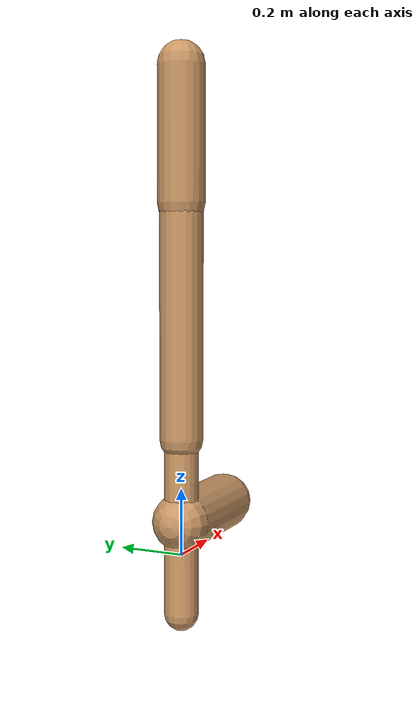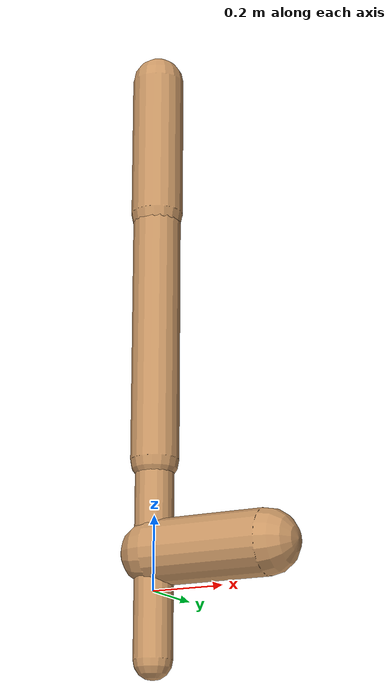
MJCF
<mujoco model="walker2d">
  <compiler angle="degree" coordinate="global" inertiafromgeom="true" />
  <default>
    <joint armature="0.01" damping=".1" limited="true" />
    <geom conaffinity="0" condim="3" contype="1" density="1000" friction="0.8 .1 .1" rgba="0.8 0.6 .4 1" />
  </default>
  <option integrator="RK4" timestep="0.002" />
  <worldbody>

    <body name="torso" pos="0 0 0.5286615055324028">
      <joint armature="0" axis="1 0 0" damping="0" limited="false" name="ignorex" pos="0 0 0" stiffness="0" type="slide" />
      <joint armature="0" axis="0 0 1" damping="0" limited="false" name="ignorez" pos="0 0 0" ref="1.25" stiffness="0" type="slide" />
      <joint armature="0" axis="0 1 0" damping="0" limited="false" name="ignorey" pos="0 0 0" stiffness="0" type="hinge" />
      <geom fromto="0 0 1.45 0 0 1.05" name="torso_geom" size="0.0710860431256403" type="capsule" />
      <body name="thigh">
        <joint axis="0 -1 0" name="thigh_joint" pos="0 0 1.05" range="-150 0" type="hinge" />
        <geom fromto="0.0 0.0 1.05 0.0 0.0 0.34958139211623024" name="thigh_geom" size="0.06534521257659057" type="capsule" />
        <body name="leg" pos="0.0 0.0 -0.25041860788376974">
          <joint axis="0 -1 0" name="leg_joint" pos="0 0 0.6" range="-150 0" type="hinge" />
          <geom fromto="0.0 0.0 0.6 0.0 0.0 -0.17824289764863302" name="leg_geom" size="0.05227617006127245" type="capsule" />
          <body name="foot" pos="0.0 0.0 -0.278242897648633">
            <joint axis="0 -1 0" name="foot_joint" pos="0 0 0.1" range="-45 45" type="hinge" />
            <geom fromto="-0.0 0.0 0.10000000000000002 0.32781778599357214 0.0 0.10000000000000002" name="foot_geom" size="0.08772630301829931" type="capsule" />
          </body>
        </body>
      </body>

      <body name="thigh_left">
        <joint axis="0 -1 0" name="thigh_left_joint" pos="0 0 1.05" range="-150 0" type="hinge" />
        <geom fromto="0.0 0.0 1.05 0.0 0.0 0.34958139211623024" name="thigh_left_geom" rgba=".7 .3 .6 1" size="0.06534521257659057" type="capsule" />
        <body name="leg_left" pos="0.0 0.0 -0.25041860788376974">
          <joint axis="0 -1 0" name="leg_left_joint" pos="0 0 0.6" range="-150 0" type="hinge" />
          <geom fromto="0.0 0.0 0.6 0.0 0.0 -0.17824289764863302" name="leg_left_geom" rgba=".7 .3 .6 1" size="0.05227617006127245" type="capsule" />
          <body name="foot_left" pos="0.0 0.0 -0.278242897648633">
            <joint axis="0 -1 0" name="foot_left_joint" pos="0 0 0.1" range="-45 45" type="hinge" />
            <geom fromto="-0.0 0.0 0.10000000000000002 0.32781778599357214 0.0 0.10000000000000002" name="foot_left_geom" rgba=".7 .3 .6 1" size="0.08772630301829931" type="capsule" />
          </body>
        </body>
      </body>
    </body>
  </worldbody>
  <actuator>

    <motor ctrllimited="true" ctrlrange="-1.0 1.0" gear="100" joint="thigh_joint" />
    <motor ctrllimited="true" ctrlrange="-1.0 1.0" gear="100" joint="leg_joint" />
    <motor ctrllimited="true" ctrlrange="-1.0 1.0" gear="100" joint="foot_joint" />
    <motor ctrllimited="true" ctrlrange="-1.0 1.0" gear="100" joint="thigh_left_joint" />
    <motor ctrllimited="true" ctrlrange="-1.0 1.0" gear="100" joint="leg_left_joint" />
    <motor ctrllimited="true" ctrlrange="-1.0 1.0" gear="100" joint="foot_left_joint" />

  </actuator>
</mujoco>
